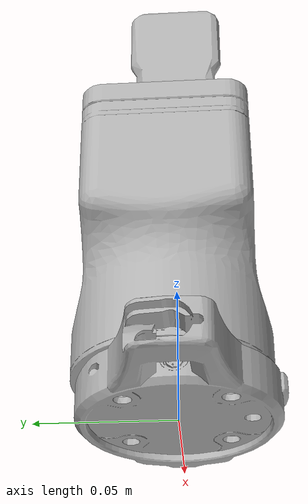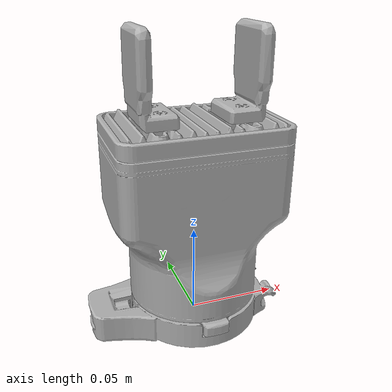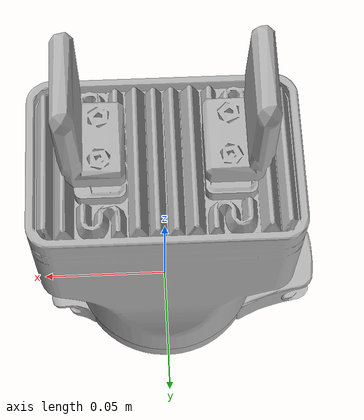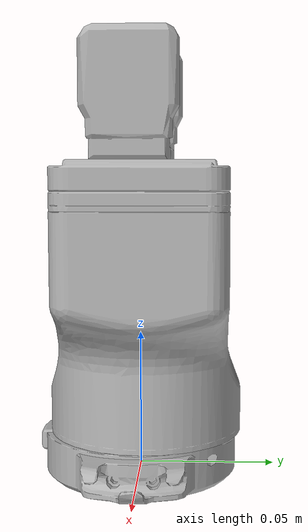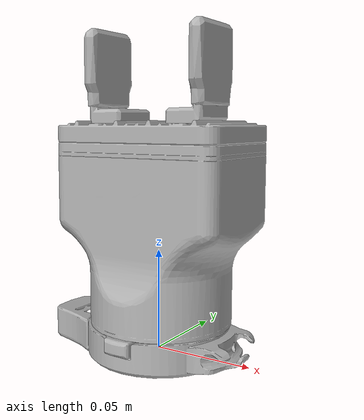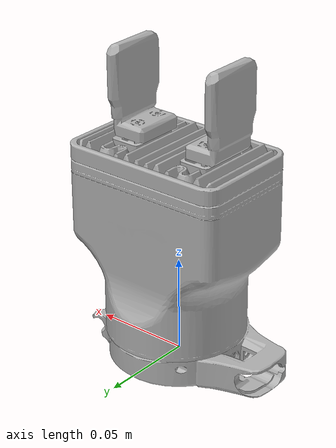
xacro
<?xml version="1.0"?>
<robot xmlns:xacro="http://wiki.ros.org/xacro" name="onrobot">
    <!-- Arguments -->
    <xacro:arg name="onrobot_type" default="2fg7"/>
    <xacro:arg name="prefix" default=""/>
    <xacro:arg name="use_fake_hardware" default="false"/>
    <xacro:arg name="use_mock_hardware" default="false"/>
    <xacro:arg name="connection_type" default="serial"/>
    <xacro:arg name="device" default="/tmp/ttyUR"/>
    <xacro:arg name="ip_address" default="192.168.1.1"/>
    <xacro:arg name="port" default="502"/>
    <xacro:arg name="timeout_ms" default="2000"/>

    <!-- Import the OnRobot macro -->
    <xacro:include filename="$(find onrobot_description)/urdf/onrobot_macro.xacro"/>

    <!-- Create OnRobot instance -->
    <xacro:onrobot
        onrobot_type="$(arg onrobot_type)"
        prefix="$(arg prefix)"
        use_fake_hardware="$(arg use_fake_hardware)"
        use_mock_hardware="$(arg use_mock_hardware)"
        connection_type="$(arg connection_type)"
        device="$(arg device)"
        ip_address="$(arg ip_address)"
        port="$(arg port)"
        timeout_ms="$(arg timeout_ms)"
    />

    <!-- Create link fixed to the world -->
    <link name="world" />
    <joint name="$(arg prefix)onrobot_base_link_joint" type="fixed">
        <origin xyz="0 0 0" rpy="0 0 0"/>
        <parent link="world"/>
        <child link="$(arg prefix)onrobot_base_link"/>
    </joint>
</robot>

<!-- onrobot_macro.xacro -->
<robot xmlns:xacro="http://wiki.ros.org/xacro">

  <!-- Main macro for all OnRobot grippers -->
  <xacro:macro name="onrobot"
    params="
      onrobot_type
      prefix:=''
      use_fake_hardware:=false
      use_mock_hardware:=false
      connection_type:=tcp
      device:=/tmp/ttyUR
      ip_address:=192.168.1.1
      port:=502
      device_address:=65
      timeout_ms:=2000
      include_ros2_control:=true
    ">

    <!-- ====================== 2FG7 ====================== -->
    <xacro:if value="${onrobot_type == '2fg7'}">
      <xacro:include filename="$(find onrobot_description)/urdf/2fg7_macro.xacro"/>
      <xacro:onrobot_2fg7 prefix="${prefix}" onrobot_type="${onrobot_type}"/>
    </xacro:if>

    <!-- ====================== 3FG15 ====================== -->
    <xacro:if value="${onrobot_type == '3fg15'}">
      <xacro:include filename="$(find onrobot_description)/urdf/3fg15_macro.xacro"/>
      <xacro:onrobot_3fg15 prefix="${prefix}"/>
    </xacro:if>

    <!-- ====================== VGC10 ====================== -->
    <xacro:if value="${onrobot_type == 'vgc10'}">
      <xacro:include filename="$(find onrobot_description)/urdf/vgc10_macro.xacro"/>
      <xacro:onrobot_vgc10 prefix="${prefix}"/>
    </xacro:if>

    <!-- ====================== ROS2 Control (Humble) ====================== -->
    <xacro:if value="${include_ros2_control and onrobot_type in ['2fg7', '3fg15']}">
      <ros2_control name="OnRobotGripper" type="actuator">
        <hardware>
          <xacro:if value="${use_mock_hardware}">
            <plugin>mock_components/GenericSystem</plugin>
          </xacro:if>
          <xacro:unless value="${use_mock_hardware}">
            <!-- 2FG7 - TwoFG Hardware Interface -->
            <xacro:if value="${onrobot_type == '2fg7'}">
              <plugin>onrobot_driver::TwoFGHardwareInterface</plugin>
              <param name="onrobot_type">${onrobot_type}</param>
              <param name="prefix">${prefix}</param>
              <param name="connection_type">${connection_type}</param>
              <param name="device">${device}</param>
              <param name="ip_address">${ip_address}</param>
              <param name="port">${port}</param>
              <param name="device_address">${device_address}</param>
              <param name="timeout_ms">${timeout_ms}</param>
              <param name="use_fake_hardware">${use_fake_hardware}</param>
            </xacro:if>

            <!-- 3FG15 - ThreeFG Hardware Interface -->
            <xacro:if value="${onrobot_type == '3fg15'}">
              <plugin>onrobot_driver::ThreeFGHardwareInterface</plugin>
              <param name="onrobot_type">${onrobot_type}</param>
              <param name="prefix">${prefix}</param>
              <param name="connection_type">${connection_type}</param>
              <param name="device">${device}</param>
              <param name="ip_address">${ip_address}</param>
              <param name="port">${port}</param>
              <param name="device_address">${device_address}</param>
              <param name="timeout_ms">${timeout_ms}</param>
              <param name="use_fake_hardware">${use_fake_hardware}</param>
            </xacro:if>
          </xacro:unless>
        </hardware>

        <!-- Joint configuration for actuated grippers -->
        <joint name="${prefix}finger_width">
          <command_interface name="position"/>
          <state_interface name="position"/>
          <state_interface name="velocity"/>
          <state_interface name="effort"/>
          <state_interface name="grip_detected"/>
          <state_interface name="busy"/>
        </joint>
      </ros2_control>
    </xacro:if>

    <!-- VGC10 Vacuum Gripper -->
    <xacro:if value="${include_ros2_control and onrobot_type == 'vgc10'}">
      <ros2_control name="OnRobotGripper" type="actuator">
        <hardware>
          <xacro:if value="${use_mock_hardware}">
            <plugin>mock_components/GenericSystem</plugin>
          </xacro:if>
          <xacro:unless value="${use_mock_hardware}">
            <plugin>onrobot_driver::VGC10HardwareInterface</plugin>
            <param name="onrobot_type">${onrobot_type}</param>
            <param name="prefix">${prefix}</param>
            <param name="connection_type">${connection_type}</param>
            <param name="device">${device}</param>
            <param name="ip_address">${ip_address}</param>
            <param name="port">${port}</param>
            <param name="device_address">${device_address}</param>
              <param name="timeout_ms">${timeout_ms}</param>
            <param name="use_fake_hardware">${use_fake_hardware}</param>
          </xacro:unless>
        </hardware>

        <!-- Independent Dual Vacuum Channels -->
        <joint name="${prefix}vacuum_channel_a">
          <command_interface name="position"/>
          <state_interface name="position"/>
          <state_interface name="velocity"/>
          <state_interface name="effort"/>
          <state_interface name="vacuum_level"/>
          <state_interface name="pressure_kpa"/>
        </joint>
        <joint name="${prefix}vacuum_channel_b">
          <command_interface name="position"/>
          <state_interface name="position"/>
          <state_interface name="velocity"/>
          <state_interface name="effort"/>
          <state_interface name="vacuum_level"/>
          <state_interface name="pressure_kpa"/>
        </joint>
      </ros2_control>
    </xacro:if>

  </xacro:macro>
</robot>

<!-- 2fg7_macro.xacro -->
<robot xmlns:xacro="http://ros.org/wiki/xacro">

  <xacro:include filename="$(find onrobot_description)/urdf/inc/common_utils.xacro" />
  <xacro:include filename="$(find onrobot_description)/urdf/inc/common_materials.xacro" />

  <xacro:macro name="onrobot_2fg7" params="prefix onrobot_type:='2fg7'">

    <!-- Base Link -->
    <link name="${prefix}onrobot_base_link">
      <inertial>
        <origin xyz="0 0 0" rpy="0 0 0"/>
        <mass value="0.3"/>
        <inertia ixx="0.0005" ixy="0.0" ixz="0.0" iyy="0.0005" iyz="0.0" izz="0.0005"/>
      </inertial>
      <visual>
        <origin xyz="0 0 0" rpy="-1.570796 0 -1.570796"/>
        <geometry>
          <mesh filename="package://onrobot_description/meshes/2fg7/visual/Quick_Changer_Robot_side_1.stl" scale="0.001 0.001 0.001"/>
        </geometry>
        <material name="onrobot_silver"/>
      </visual>
      <visual>
        <origin xyz="-0.05539 -0.14017 -0.28046" rpy="1.570796 0 0"/>
        <geometry>
          <mesh filename="package://onrobot_description/meshes/2fg7/visual/official_base_onrobot.stl" scale="0.001 0.001 0.001"/>
        </geometry>
        <material name="onrobot_silver"/>
      </visual>
      <collision>
        <origin xyz="0 0 0" rpy="-1.570796 0 -1.570796"/>
        <geometry>
          <mesh filename="package://onrobot_description/meshes/2fg7/collision/Quick_Changer_Robot_side_1.stl" scale="0.001 0.001 0.001"/>
        </geometry>
      </collision>
      <collision>
        <origin xyz="-0.05539 -0.14017 -0.28046" rpy="1.570796 0 0"/>
        <geometry>
          <mesh filename="package://onrobot_description/meshes/2fg7/collision/official_base_onrobot.stl" scale="0.001 0.001 0.001"/>
        </geometry>
      </collision>
    </link>

    <!-- Finger Links -->
    <link name="${prefix}left_finger_link">
      <inertial>
        <origin xyz="0 0 0" rpy="0 0 0"/>
        <mass value="0.05"/>
        <inertia ixx="0.00005" ixy="0.0" ixz="0.0" iyy="0.00005" iyz="0.0" izz="0.00005"/>
      </inertial>
      <visual>
        <origin xyz="-0.05539 -0.14017 -0.28046" rpy="1.570796 0 0"/>
        <geometry>
          <mesh filename="package://onrobot_description/meshes/2fg7/visual/official_left_finger.stl" scale="0.001 0.001 0.001"/>
        </geometry>
        <material name="onrobot_silver"/>
      </visual>
      <collision>
        <origin xyz="-0.05539 -0.14017 -0.28046" rpy="1.570796 0 0"/>
        <geometry>
          <mesh filename="package://onrobot_description/meshes/2fg7/collision/official_left_finger.stl" scale="0.001 0.001 0.001"/>
        </geometry>
      </collision>
    </link>

    <link name="${prefix}right_finger_link">
      <inertial>
        <origin xyz="0 0 0" rpy="0 0 0"/>
        <mass value="0.05"/>
        <inertia ixx="0.00005" ixy="0.0" ixz="0.0" iyy="0.00005" iyz="0.0" izz="0.00005"/>
      </inertial>
      <visual>
        <origin xyz="-0.05539 -0.14017 -0.28046" rpy="1.570796 0 0"/>
        <geometry>
          <mesh filename="package://onrobot_description/meshes/2fg7/visual/official_right_finger.stl" scale="0.001 0.001 0.001"/>
        </geometry>
        <material name="onrobot_silver"/>
      </visual>
      <collision>
        <origin xyz="-0.05539 -0.14017 -0.28046" rpy="1.570796 0 0"/>
        <geometry>
          <mesh filename="package://onrobot_description/meshes/2fg7/collision/official_right_finger.stl" scale="0.001 0.001 0.001"/>
        </geometry>
      </collision>
    </link>

    <!-- Dummy link for the main control joint -->
    <link name="${prefix}finger_width_mock_link">
      <inertial>
        <mass value="1e-9"/>
        <inertia ixx="1e-9" ixy="0" ixz="0" iyy="1e-9" iyz="0" izz="1e-9"/>
      </inertial>
    </link>

    <!-- Main control joint (finger_width) -->
    <joint name="${prefix}finger_width" type="prismatic">
      <origin xyz="0 0 0" rpy="0 0 0"/>
      <parent link="${prefix}onrobot_base_link"/>
      <child link="${prefix}finger_width_mock_link"/>
      <axis xyz="0 0 1"/>
      <limit lower="0.035" upper="0.073" velocity="0.45" effort="140"/>
    </joint>

    <!-- Left Finger Joint -->
    <joint name="${prefix}left_finger_joint" type="prismatic">
      <origin xyz="0 0 0" rpy="0 0 3.141593"/>
      <parent link="${prefix}onrobot_base_link"/>
      <child link="${prefix}left_finger_link"/>
      <axis xyz="1 0 0"/>
      <limit lower="-0.0154" upper="0.0036" effort="140" velocity="0.45"/>
      <mimic joint="${prefix}finger_width" multiplier="0.5" offset="-0.0329"/>
    </joint>

    <!-- Right Finger Joint -->
    <joint name="${prefix}right_finger_joint" type="prismatic">
      <origin xyz="0 0 0" rpy="0 0 3.141593"/>
      <parent link="${prefix}onrobot_base_link"/>
      <child link="${prefix}right_finger_link"/>
      <axis xyz="-1 0 0"/>
      <limit lower="-0.0154" upper="0.0036" effort="140" velocity="0.45"/>
      <mimic joint="${prefix}finger_width" multiplier="0.5" offset="-0.0329"/>
    </joint>

    <!-- TCP Link -->
    <link name="${prefix}gripper_tcp"/>
    <joint name="${prefix}tcp_joint" type="fixed">
      <origin xyz="0 0 0.1386" rpy="0 0 0"/> <!-- 138.6 mm relative to tool0/base_link -->
      <parent link="${prefix}onrobot_base_link"/>
      <child link="${prefix}gripper_tcp"/>
    </joint>

  </xacro:macro>
</robot>

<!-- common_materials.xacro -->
<robot xmlns:xacro="http://www.ros.org/wiki/xacro">

  <!-- Use unique names for gripper materials to avoid conflicts -->
  <material name="onrobot_silver">
    <color rgba="0.700 0.700 0.700 1.000"/>
  </material>

  <material name="onrobot_gripper_gray">
    <color rgba="0.700 0.700 0.700 1.000"/>
  </material>

  <material name="onrobot_black">
    <color rgba="0.100 0.100 0.100 1.000"/>
  </material>

</robot>
